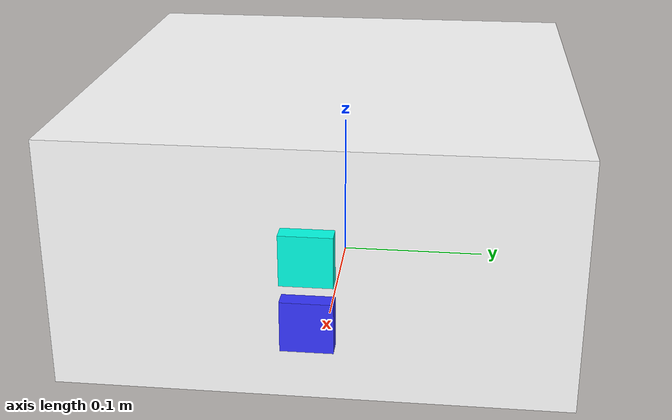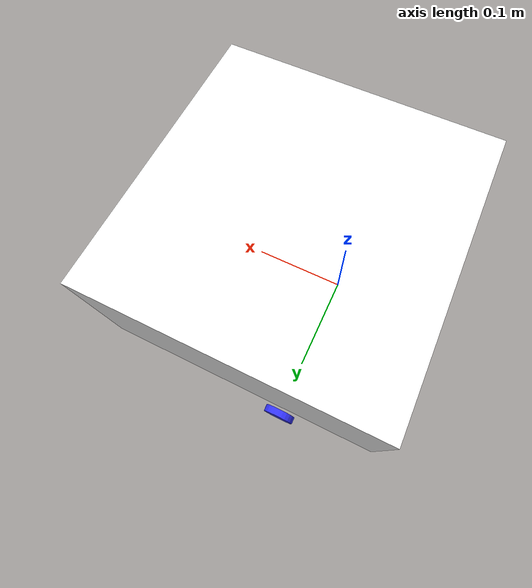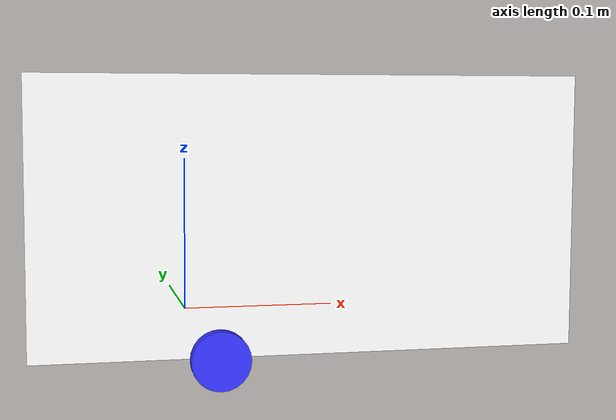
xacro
<?xml version="1.0"?>
<robot xmlns:xacro="http://www.ros.org/wiki/xacro"  name="robot">

    <xacro:arg name="use_ros2_control" default="true"/>
    <xacro:arg name="sim_mode" default="false"/>

    <xacro:include filename="robot_core.xacro" />
    <xacro:include filename="robot_colours.xacro" />
    <xacro:include filename="camera.xacro" />
    <xacro:include filename="ultrasonic.xacro" />
    <xacro:include filename="ros2_control.xacro" />

</robot>

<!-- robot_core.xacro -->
<robot xmlns:xacro="http://www.ros.org/wiki/xacro">

    <xacro:include filename="inertial_macros.xacro"/>

    <xacro:property name="chassis_geometry">
            <origin xyz="0.15 0 0.075" rpy="0 0 0"/>
            <geometry>
                <box size="0.3 0.3 0.15"/>
            </geometry>
    </xacro:property>

    <xacro:property name="wheel_geometry_v">
            <geometry>
                <cylinder length="0.007" radius="0.016" />
            </geometry>
    </xacro:property>

    <xacro:property name="wheel_geometry_c">
            <geometry>
                <sphere radius="0.016" />
            </geometry>
    </xacro:property>

    <xacro:property name="caster_wheel_geometry">
            <geometry>
                <sphere radius="0.0127" />
            </geometry>
    </xacro:property>

    <link name="base_link">
    </link>

    <joint name="chassis_joint" type="fixed">
        <parent link="base_link"/>
        <child link="chassis"/>
        <origin xyz="-0.1 0 0"/>
    </joint>

    <link name="chassis">
        <visual>
            <xacro:insert_block name="chassis_geometry" />
            <material name="white"/>
        </visual>
        <collision>
            <xacro:insert_block name="chassis_geometry" />
        </collision>

        <xacro:inertial_box mass="0.5" x="0.3" y="0.3" z="0.15">
            <origin xyz="0.15 0 0.075" rpy="0 0 0"/>
        </xacro:inertial_box>
    </link>

    <!-- LEFT WHEEL -->

    <joint name="left_wheel_joint" type="continuous">
        <parent link="base_link"/>
        <child link="left_wheel"/>
        <origin xyz="0 0.157 0" rpy="-${pi/2} 0 0"/>
        <axis xyz="0 0 1"/>
    </joint>

    <link name="left_wheel">
        <visual>
            <xacro:insert_block name="wheel_geometry_v"/>
            <material name="blue"/>
        </visual>
        <collision>
            <xacro:insert_block name="wheel_geometry_c"/>
        </collision>

        <xacro:inertial_cylinder mass="0.1" length="0.007" radius="0.016">
            <origin xyz="0 0 0" rpy="0 0 0"/>
        </xacro:inertial_cylinder>

    </link>

    <!-- RIGHT WHEEL -->

    <joint name="right_wheel_joint" type="continuous">
        <parent link="base_link"/>
        <child link="right_wheel"/>
        <origin xyz="0 -0.157 0" rpy="${pi/2} 0 0"/>
        <axis xyz="0 0 -1"/>
    </joint>

    <link name="right_wheel">
        <visual>
            <xacro:insert_block name="wheel_geometry_v"/>
            <material name="blue"/>
        </visual>
        <collision>
            <xacro:insert_block name="wheel_geometry_c"/>
        </collision>

        <xacro:inertial_cylinder mass="0.1" length="0.007" radius="0.016">
            <origin xyz="0 0 0" rpy="0 0 0"/>
        </xacro:inertial_cylinder>
    </link>

    <!-- CASTER WHEEL -->

    <joint name="caster_wheel_joint" type="fixed">
        <parent link="chassis"/>
        <child link="caster_wheel"/>
        <origin xyz="0.24 0 0" rpy="0 0 0"/>
    </joint>

    <link name="caster_wheel">
        <visual>
            <xacro:insert_block name="caster_wheel_geometry"/>
            <material name="black"/>
        </visual>
        <collision>
            <xacro:insert_block name="caster_wheel_geometry"/>
        </collision>

        <xacro:inertial_sphere mass="0.1" radius="0.0127">
            <origin xyz="0 0 0" rpy="0 0 0"/>
        </xacro:inertial_sphere>
    </link>

    <gazebo reference="caster_wheel">
        <material>Gazebo/Black</material>
        <mu1 value="0.001"/>
        <mu2 value="0.001"/>
    </gazebo>

</robot>

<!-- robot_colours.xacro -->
<robot xmlns:xacro="http://www.ros.org/wiki/xacro"  name="robot">

    <material name="white">
        <color rgba="1 1 1 1"/>
    </material>

    <material name="orange">
        <color rgba="1 0.3 0.1 1"/>
    </material>

    <material name="blue">
        <color rgba="0.2 0.2 1 1"/>
    </material>

    <material name="black">
        <color rgba="0 0 0 1"/>
    </material>

    <material name="red">
        <color rgba="0 1 0.9 0"/>
    </material>

</robot>

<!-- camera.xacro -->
<robot xmlns:xacro="http://www.ros.org/wiki/xacro" >

    <joint name="camera_joint" type="fixed">
        <parent link="chassis"/>
        <child link="camera_link"/>
        <origin xyz="0.305 0 0.09" rpy="0 0.02 0"/>
    </joint>

    <link name="camera_link">
        <visual>
            <geometry>
                <box size="0.010 0.03 0.03"/>
            </geometry>
            <material name="red"/>
        </visual>
    </link>

    <joint name="camera_optical_joint" type="fixed">
        <parent link="camera_link"/>
        <child link="camera_link_optical"/>
        <origin xyz="0 0 0" rpy="${-pi/2} 0 ${-pi/2}"/>
    </joint>

    <link name="camera_link_optical"></link>

    <gazebo reference="camera_link">
        <material>Gazebo/Red</material>

        <sensor name="camera" type="camera">
            <pose> 0 0 0 0 0 0 </pose>
            <visualize>true</visualize>
            <update_rate>10</update_rate>
            <camera>
                <horizontal_fov>1.089</horizontal_fov>
                <image>
                    <format>R8G8B8</format>
                    <width>640</width>
                    <height>480</height>
                </image>
                <clip>
                    <near>0.05</near>
                    <far>8.0</far>
                </clip>
            </camera>
            <plugin name="camera_controller" filename="libgazebo_ros_camera.so">
                <frame_name>camera_link_optical</frame_name>
            </plugin>
        </sensor>
    </gazebo>

</robot>

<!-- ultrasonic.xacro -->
<robot xmlns:xacro="http://www.ros.org/wiki/xacro">

    <joint name="ultrasonic_joint" type="fixed">
        <parent link="chassis"/>
        <child link="ultrasonic_link"/>
        <origin xyz="0.305 0 0.05" rpy="0 0 0"/>
    </joint>

    <link name="ultrasonic_link">
        <visual>
            <geometry>
                <box size="0.010 0.03 0.03"/>
            </geometry>
            <material name="blue"/>
        </visual>
    </link>

    <gazebo reference="ultrasonic_link">
        <material>Gazebo/Blue</material>

        <sensor name="ultrasonic" type="ray">
            <always_on>true</always_on>
            <visualize>true</visualize>
            <pose> 0 0 0 0 0 0 </pose>
            <update_rate>5</update_rate>
            <ray>
                <scan>
                    <horizontal>
                        <samples>5</samples>
                        <resolution>1.000000</resolution>
                        <min_angle>-0.15</min_angle>
                        <max_angle>0.15</max_angle>
                    </horizontal>
                    <vertical>
                        <samples>5</samples>
                        <resolution>1.000000</resolution>
                        <min_angle>-0.01</min_angle>
                        <max_angle>0.01</max_angle>
                    </vertical>
                </scan>
                <range>
                    <min>0.02</min>
                    <max>2</max>
                    <resolution>0.01</resolution>
                </range>
                <noise>
                    <type>gaussian</type>
                    <mean>0.0</mean>
                    <stddev>0.01</stddev>
                </noise>
            </ray>
            <plugin name="ultrasonic_sensor" filename="libgazebo_ros_ray_sensor.so">
            <ros>
                <remapping>~/out:=ultrasonic_sensor</remapping>
            </ros>
            <output_type>sensor_msgs/Range</output_type>
            <radiation_type>ultrasound</radiation_type>
            <frame_name>ultrasonic_link_optical</frame_name>
            </plugin>
        </sensor>
    </gazebo>

</robot>
